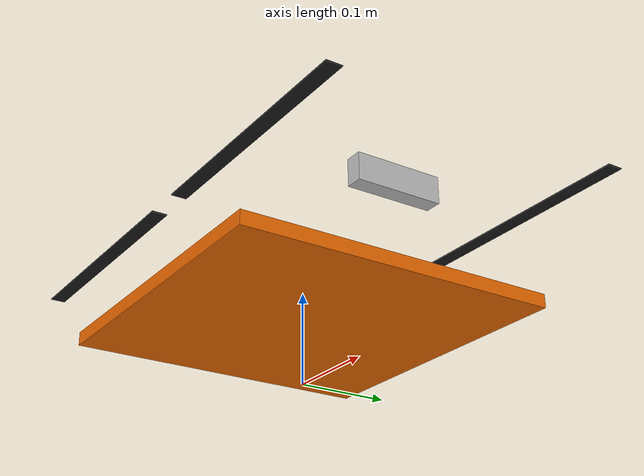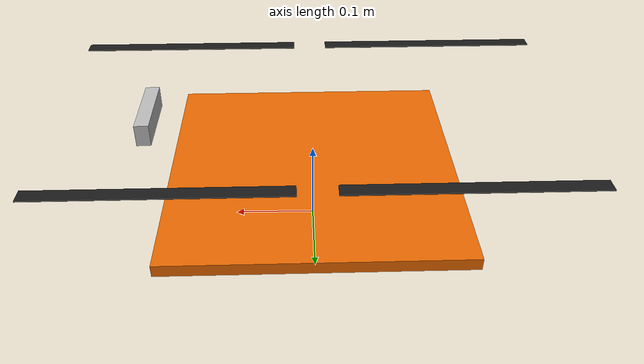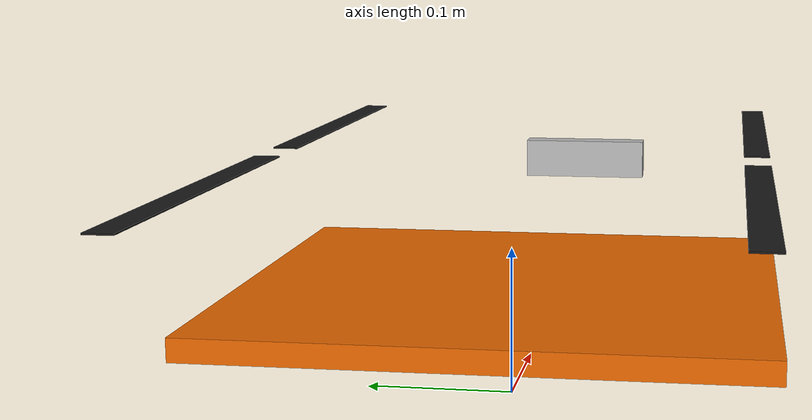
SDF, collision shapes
<?xml version="1.0" encoding="UTF-8"?>
<sdf version='1.9'>
  <model name='f450'>

    <include merge='true'>
      <uri>model://f450_base</uri>
    </include>

    <!-- rotor_0: front-left CCW -->
    <plugin filename="gz-sim-multicopter-motor-model-system"
            name="gz::sim::systems::MulticopterMotorModel">
      <jointName>rotor_0_joint</jointName>
      <linkName>rotor_0</linkName>
      <turningDirection>ccw</turningDirection>
      <timeConstantUp>0.0125</timeConstantUp>
      <timeConstantDown>0.025</timeConstantDown>
      <maxRotVelocity>1000.0</maxRotVelocity>
      <motorConstant>1.269e-05</motorConstant>
      <momentConstant>0.016</momentConstant>
      <commandSubTopic>command/motor_speed</commandSubTopic>
      <motorNumber>0</motorNumber>
      <rotorDragCoefficient>8.06428e-05</rotorDragCoefficient>
      <rollingMomentCoefficient>1e-06</rollingMomentCoefficient>
      <rotorVelocitySlowdownSim>10</rotorVelocitySlowdownSim>
      <motorType>velocity</motorType>
    </plugin>

    <!-- rotor_1: rear-right CCW -->
    <plugin filename="gz-sim-multicopter-motor-model-system"
            name="gz::sim::systems::MulticopterMotorModel">
      <jointName>rotor_1_joint</jointName>
      <linkName>rotor_1</linkName>
      <turningDirection>ccw</turningDirection>
      <timeConstantUp>0.0125</timeConstantUp>
      <timeConstantDown>0.025</timeConstantDown>
      <maxRotVelocity>1000.0</maxRotVelocity>
      <motorConstant>1.269e-05</motorConstant>
      <momentConstant>0.016</momentConstant>
      <commandSubTopic>command/motor_speed</commandSubTopic>
      <motorNumber>1</motorNumber>
      <rotorDragCoefficient>8.06428e-05</rotorDragCoefficient>
      <rollingMomentCoefficient>1e-06</rollingMomentCoefficient>
      <rotorVelocitySlowdownSim>10</rotorVelocitySlowdownSim>
      <motorType>velocity</motorType>
    </plugin>

    <!-- rotor_2: front-right CW -->
    <plugin filename="gz-sim-multicopter-motor-model-system"
            name="gz::sim::systems::MulticopterMotorModel">
      <jointName>rotor_2_joint</jointName>
      <linkName>rotor_2</linkName>
      <turningDirection>cw</turningDirection>
      <timeConstantUp>0.0125</timeConstantUp>
      <timeConstantDown>0.025</timeConstantDown>
      <maxRotVelocity>1000.0</maxRotVelocity>
      <motorConstant>1.269e-05</motorConstant>
      <momentConstant>0.016</momentConstant>
      <commandSubTopic>command/motor_speed</commandSubTopic>
      <motorNumber>2</motorNumber>
      <rotorDragCoefficient>8.06428e-05</rotorDragCoefficient>
      <rollingMomentCoefficient>1e-06</rollingMomentCoefficient>
      <rotorVelocitySlowdownSim>10</rotorVelocitySlowdownSim>
      <motorType>velocity</motorType>
    </plugin>

    <!-- rotor_3: rear-left CW -->
    <plugin filename="gz-sim-multicopter-motor-model-system"
            name="gz::sim::systems::MulticopterMotorModel">
      <jointName>rotor_3_joint</jointName>
      <linkName>rotor_3</linkName>
      <turningDirection>cw</turningDirection>
      <timeConstantUp>0.0125</timeConstantUp>
      <timeConstantDown>0.025</timeConstantDown>
      <maxRotVelocity>1000.0</maxRotVelocity>
      <motorConstant>1.269e-05</motorConstant>
      <momentConstant>0.016</momentConstant>
      <commandSubTopic>command/motor_speed</commandSubTopic>
      <motorNumber>3</motorNumber>
      <rotorDragCoefficient>8.06428e-05</rotorDragCoefficient>
      <rollingMomentCoefficient>1e-06</rollingMomentCoefficient>
      <rotorVelocitySlowdownSim>10</rotorVelocitySlowdownSim>
      <motorType>velocity</motorType>
    </plugin>

  </model>
</sdf>

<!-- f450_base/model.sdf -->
<sdf version='1.9'>
  <model name='f450_base'>
    <pose>0 0 0.1 0 0 0</pose>
    <self_collide>false</self_collide>
    <static>false</static>

    <!-- ══════════════════════════════════════════
         BASE LINK
    ══════════════════════════════════════════ -->
    <link name="base_link">
      <inertial>
        <mass>1.477</mass>
        <inertia>
          <ixx>0.01152</ixx><ixy>0</ixy><ixz>0</ixz>
          <iyy>0.01152</iyy><iyz>0</iyz>
          <izz>0.0218</izz>
        </inertia>
      </inertial>

      <gravity>true</gravity>
      <velocity_decay/>

      <!-- Visual: F450 DAE mesh (no baked rotors) -->
      <visual name="base_link_visual">
        <pose>0 0 0 0 0 0</pose>
        <geometry>
          <mesh>
            <scale>1 1 1</scale>
            <uri>file:///home/shantam/irobot/px4_sim/f450_quad_centered_scaled_norotor.dae</uri>
          </mesh>
        </geometry>
        <material>
          <ambient>0.9 0.4 0.0 1</ambient>
          <diffuse>0.9 0.4 0.0 1</diffuse>
          <specular>0.3 0.3 0.3 1</specular>
          <emissive>0.05 0.02 0.0 1</emissive>
        </material>
      </visual>

      <!-- Collision: single STL mesh (no baked rotors) -->
      <collision name="base_link_collision">
        <pose>0 0 -.03 0 0 0</pose>
        <geometry>
          <box>
            <size>0.35355339059327373 0.35355339059327373 0.015</size>
          </box>
        </geometry>
        <surface>
          <contact>
            <ode>
              <min_depth>0.01</min_depth>
              <max_vel>0</max_vel>
            </ode>
          </contact>
          <friction>
            <ode />
          </friction>
        </surface>
      </collision>

      <!-- ══════════════════════════════════════════
           PX4 REQUIRED SENSORS
           Exact noise values from x500_base
      ══════════════════════════════════════════ -->

      <sensor name="air_pressure_sensor" type="air_pressure">
        <gz_frame_id>base_link</gz_frame_id>
        <always_on>1</always_on>
        <update_rate>50</update_rate>
        <air_pressure>
          <pressure>
            <noise type="gaussian">
              <mean>0</mean>
              <stddev>3</stddev>
            </noise>
          </pressure>
        </air_pressure>
      </sensor>

      <sensor name="magnetometer_sensor" type="magnetometer">
        <gz_frame_id>base_link</gz_frame_id>
        <always_on>1</always_on>
        <update_rate>100</update_rate>
        <magnetometer>
          <x><noise type="gaussian"><stddev>0.0001</stddev></noise></x>
          <y><noise type="gaussian"><stddev>0.0001</stddev></noise></y>
          <z><noise type="gaussian"><stddev>0.0001</stddev></noise></z>
        </magnetometer>
      </sensor>

      <sensor name="imu_sensor" type="imu">
        <gz_frame_id>base_link</gz_frame_id>
        <always_on>1</always_on>
        <update_rate>250</update_rate>
        <imu>
          <angular_velocity>
            <x><noise type="gaussian"><mean>0.0</mean><stddev>0.0008726646</stddev></noise></x>
            <y><noise type="gaussian"><mean>0.0</mean><stddev>0.0008726646</stddev></noise></y>
            <z><noise type="gaussian"><mean>0.0</mean><stddev>0.0008726646</stddev></noise></z>
          </angular_velocity>
          <linear_acceleration>
            <x><noise type="gaussian"><mean>0.0</mean><stddev>0.00637</stddev></noise></x>
            <y><noise type="gaussian"><mean>0.0</mean><stddev>0.00637</stddev></noise></y>
            <z><noise type="gaussian"><mean>0.0</mean><stddev>0.00686</stddev></noise></z>
          </linear_acceleration>
        </imu>
      </sensor>

      <sensor name="navsat_sensor" type="navsat">
        <gz_frame_id>base_link</gz_frame_id>
        <always_on>1</always_on>
        <update_rate>30</update_rate>
      </sensor>

    </link>

    <!-- ══════════════════════════════════════════
         5x ToF SENSORS (A010, 72° ring)
    ══════════════════════════════════════════ -->

    <!-- Single shared ToF link, centered at drone origin -->
    <link name="tof_array_link">
      <inertial>
        <mass>0.005</mass>
        <inertia><ixx>1e-6</ixx><ixy>0</ixy><ixz>0</ixz>
                <iyy>1e-6</iyy><iyz>0</iyz><izz>1e-6</izz></inertia>
      </inertial>
      <self_collide>false</self_collide>
      <gravity>false</gravity>
    </link>
    <joint name="tof_array_joint" type="fixed">
      <parent>base_link</parent>
      <child>tof_array_link</child>
    </joint>

      <!-- ToF 0: front, 0° -->
    <link name="tof_0_link">
      <pose>0.25 0 0  0 0 0</pose>          <!-- front, 0° yaw -->
      <inertial><mass>0.0001</mass>
        <inertia><ixx>1e-9</ixx><ixy>0</ixy><ixz>0</ixz>
                <iyy>1e-9</iyy><iyz>0</iyz><izz>1e-9</izz></inertia>
      </inertial>
      <sensor name="tof_0" type="depth_camera">         <!-- offset from tof_array_link -->
        <gz_frame_id>tof_0_link</gz_frame_id>
        <always_on>1</always_on>
        <visualize>true</visualize>
        <update_rate>20</update_rate>
        <camera>
          <horizontal_fov>1.2217</horizontal_fov>
          <image><width>100</width><height>100</height><format>R_FLOAT32</format></image>
          <clip><near>0.2</near><far>3.0</far></clip>
        </camera>
        <topic>tof_0_depth</topic>
      </sensor>
    </link>
    <joint name="tof_0_joint" type="fixed">
      <parent>tof_array_link</parent>   <!-- parent is tof_array_link, not base_link -->
      <child>tof_0_link</child>
    </joint>

      <!-- ToF 1: front-left, 72° -->
    <link name="tof_1_link">
      <pose>0.077 0.236 0  0 0 1.2566</pose> <!-- front-left, 72° yaw -->
      <inertial><mass>0.0001</mass>
        <inertia><ixx>1e-9</ixx><ixy>0</ixy><ixz>0</ixz>
                <iyy>1e-9</iyy><iyz>0</iyz><izz>1e-9</izz></inertia>
      </inertial>

      <sensor name="tof_1" type="depth_camera">
        <gz_frame_id>tof_1_link</gz_frame_id>
        <always_on>1</always_on>
        <visualize>true</visualize>
        <update_rate>20</update_rate>
        <camera>
          <horizontal_fov>1.2217</horizontal_fov>
          <image><width>100</width><height>100</height><format>R_FLOAT32</format></image>
          <clip><near>0.2</near><far>3.0</far></clip>
        </camera>
        <topic>tof_1_depth</topic>
      </sensor>
    </link>
    <joint name="tof_1_joint" type="fixed">
      <parent>tof_array_link</parent>
      <child>tof_1_link</child>
    </joint>

    <link name="tof_2_link">
      <pose>-0.202 0.147 0  0 0 2.5133</pose> <!-- rear-left, 144° yaw -->
      <inertial><mass>0.0001</mass>
        <inertia><ixx>1e-9</ixx><ixy>0</ixy><ixz>0</ixz>
                <iyy>1e-9</iyy><iyz>0</iyz><izz>1e-9</izz></inertia>
      </inertial>

      <!-- ToF 2: rear-left, 144° -->
      <sensor name="tof_2" type="depth_camera">
        <gz_frame_id>tof_2_link</gz_frame_id>
        <always_on>1</always_on>
        <visualize>true</visualize>
        <update_rate>20</update_rate>
        <camera>
          <horizontal_fov>1.2217</horizontal_fov>
          <image><width>100</width><height>100</height><format>R_FLOAT32</format></image>
          <clip><near>0.2</near><far>3.0</far></clip>
        </camera>
        <topic>tof_2_depth</topic>
      </sensor>
    </link>
    <joint name="tof_2_joint" type="fixed">
      <parent>tof_array_link</parent>
      <child>tof_2_link</child>
    </joint>

    <link name="tof_3_link">
      <pose>-0.202 -0.147 0  0 0 -2.5133</pose> <!-- rear-right, -144° yaw -->
      <inertial><mass>0.0001</mass>
        <inertia><ixx>1e-9</ixx><ixy>0</ixy><ixz>0</ixz>
                <iyy>1e-9</iyy><iyz>0</iyz><izz>1e-9</izz></inertia>
      </inertial>

      <!-- ToF 3: rear-right, -144° -->
      <sensor name="tof_3" type="depth_camera">
        <gz_frame_id>tof_3_link</gz_frame_id>
        <always_on>1</always_on>
        <visualize>true</visualize>
        <update_rate>20</update_rate>
        <camera>
          <horizontal_fov>1.2217</horizontal_fov>
          <image><width>100</width><height>100</height><format>R_FLOAT32</format></image>
          <clip><near>0.2</near><far>3.0</far></clip>
        </camera>
        <topic>tof_3_depth</topic>
      </sensor>
    </link>
    <joint name="tof_3_joint" type="fixed">
      <parent>tof_array_link</parent>
      <child>tof_3_link</child>
    </joint>

    <link name="tof_4_link">
      <pose>0.077 -0.236 0  0 0 -1.2566</pose> <!-- front-right, -72° yaw -->
      <inertial><mass>0.0001</mass>
        <inertia><ixx>1e-9</ixx><ixy>0</ixy><ixz>0</ixz>
                <iyy>1e-9</iyy><iyz>0</iyz><izz>1e-9</izz></inertia>
      </inertial>

      <!-- ToF 4: front-right, -72° -->
      <sensor name="tof_4" type="depth_camera">
        <gz_frame_id>tof_4_link</gz_frame_id>
        <always_on>1</always_on>
        <visualize>true</visualize>
        <update_rate>20</update_rate>
        <camera>
          <horizontal_fov>1.2217</horizontal_fov>
          <image><width>100</width><height>100</height><format>R_FLOAT32</format></image>
          <clip><near>0.2</near><far>3.0</far></clip>
        </camera>
        <topic>tof_4_depth</topic>
      </sensor>

    </link>
    <joint name="tof_4_joint" type="fixed">
      <parent>tof_array_link</parent>
      <child>tof_4_link</child>
    </joint>

    <!-- ══════════════════════════════════════════
         RGBD FRONT CAMERA
    ══════════════════════════════════════════ -->
    <link name="rgbd_cam_link">
      <inertial>
        <mass>0.001</mass>
        <inertia><ixx>1e-6</ixx><ixy>0</ixy><ixz>0</ixz><iyy>1e-6</iyy><iyz>0</iyz><izz>1e-6</izz></inertia>
      </inertial>

      <pose>0.2 0 0.02 0 0 0</pose>

      <collision name="rgbd_cam_link/collision">
        <pose>0.00358 -0.03 .014 0 0 0</pose>
        <geometry>
          <box>
            <size>0.0175 0.091 0.028</size>
          </box>
        </geometry>
      </collision>

      <sensor name="rgbd_camera_rgb" type="camera">
        <gz_frame_id>rgbd_cam_link</gz_frame_id>
        <always_on>1</always_on><update_rate>30</update_rate>
        <camera>
          <horizontal_fov>1.047</horizontal_fov>
          <image><width>1280</width><height>720</height></image>
          <clip><near>0.1</near><far>10.0</far></clip>
          <noise><type>gaussian</type><mean>0</mean><stddev>0.005</stddev></noise>
        </camera>
        <visualize>true</visualize>
        <topic>rgbd_image</topic>
      </sensor>

      <sensor name="rgbd_camera" type="depth_camera">
        <gz_frame_id>rgbd_cam_link</gz_frame_id>
        <always_on>1</always_on><update_rate>30</update_rate>
        <camera>
          <horizontal_fov>1.047</horizontal_fov>
          <image><width>1280</width><height>720</height><format>R_FLOAT32</format></image>
          <clip><near>0.1</near><far>10.0</far></clip>
          <noise><type>gaussian</type><mean>0</mean><stddev>0.005</stddev></noise>
        </camera>
        <visualize>true</visualize>
        <topic>rgbd_depth</topic>
      </sensor>
    </link>
    <joint name="rgbd_cam_joint" type="fixed">
      <parent>base_link</parent><child>rgbd_cam_link</child>
    </joint>

    <!-- ══════════════════════════════════════════
         BOTTOM DEPTH CAMERA
    ══════════════════════════════════════════ -->
    <link name="bottom_cam_link">
      <self_collide>false</self_collide>
      <gravity>false</gravity>
      <pose>0 0 -0.05 0 1.5708 0</pose>
      <inertial>
        <mass>0.001</mass>
        <inertia><ixx>1e-6</ixx><ixy>0</ixy><ixz>0</ixz><iyy>1e-6</iyy><iyz>0</iyz><izz>1e-6</izz></inertia>
      </inertial>
      <sensor name="bottom_camera" type="depth_camera">
        <gz_frame_id>bottom_cam_link</gz_frame_id>
        <always_on>1</always_on><update_rate>20</update_rate>
        <camera>
          <horizontal_fov>1.2217</horizontal_fov>
          <image><width>100</width><height>100</height><format>R_FLOAT32</format></image>
          <clip><near>0.2</near><far>3.0</far></clip>
        </camera>
        <visualize>true</visualize>
        <topic>bottom_depth_camera</topic>
      </sensor>
    </link>
    <joint name="bottom_cam_joint" type="fixed">
      <parent>base_link</parent><child>bottom_cam_link</child>
    </joint>

    <!-- ══════════════════════════════════════════
         MOTOR BASES (static visuals at arm tips)
         Exact F450 positions: ±160.87mm = ±0.16087m
    ══════════════════════════════════════════ -->

    <link name="rotor_0">
      <!-- front-left CCW — matches CA_ROTOR0 (+x,+y) -->
      <self_collide>false</self_collide>
      <gravity>false</gravity>
      <pose>0.16087 -0.16087 0.062 0 0 0</pose>
      <self_collide>false</self_collide>
      <inertial>
        <mass>0.016076923076923075</mass>
        <inertia><ixx>3.8464910483993325e-07</ixx><ixy>0</ixy><ixz>0</ixz><iyy>2.6115851691700804e-05</iyy><iyz>0</iyz><izz>2.649858234714004e-05</izz></inertia>
      </inertial>
      <visual name="rotor_0_visual">
        <pose>-0.022 -0.146 -0.016 0 0 0</pose>
        <geometry><mesh><scale>0.846 0.846 0.846</scale><uri>model://x500_base/meshes/1345_prop_ccw.stl</uri></mesh></geometry>
        <material><ambient>0.1 0.1 0.1 1</ambient><diffuse>0.1 0.1 0.1 1</diffuse></material>
      </visual>
      <visual name="rotor_0_bell">
        <pose>0 0 -0.032 0 0 0</pose>
        <geometry><mesh><scale>1 1 1</scale><uri>model://x500_base/meshes/5010Bell.dae</uri></mesh></geometry>
      </visual>
      <collision name="rotor_0_collision">
        <geometry><box><size>0.279 0.017 0.001</size></box></geometry>
        <surface><contact><ode><min_depth>0.001</min_depth><max_vel>0</max_vel></ode></contact><friction><ode/></friction></surface>
      </collision>
    </link>
    <joint name="rotor_0_joint" type="revolute">
      <parent>base_link</parent><child>rotor_0</child>
      <axis><xyz>0 0 1</xyz><limit><lower>-1e+16</lower><upper>1e+16</upper></limit><dynamics><spring_reference>0</spring_reference><spring_stiffness>0</spring_stiffness></dynamics></axis>
    </joint>

    <link name="rotor_1">
      <gravity>true</gravity><self_collide>false</self_collide><velocity_decay/>
      <pose>-0.16087 0.16087 0.062 0 0 0</pose>
      <inertial>
        <mass>0.016076923076923075</mass>
        <inertia><ixx>3.8464910483993325e-07</ixx><ixy>0</ixy><ixz>0</ixz><iyy>2.6115851691700804e-05</iyy><iyz>0</iyz><izz>2.649858234714004e-05</izz></inertia>
      </inertial>
      <visual name="rotor_1_visual">
        <pose>-0.022 -0.146 -0.016 0 0 0</pose>
        <geometry><mesh><scale>0.846 0.846 0.846</scale><uri>model://x500_base/meshes/1345_prop_ccw.stl</uri></mesh></geometry>
        <material><ambient>0.1 0.1 0.1 1</ambient><diffuse>0.1 0.1 0.1 1</diffuse></material>
      </visual>
      <visual name="rotor_1_bell">
        <pose>0 0 -0.032 0 0 0</pose>
        <geometry><mesh><scale>1 1 1</scale><uri>model://x500_base/meshes/5010Bell.dae</uri></mesh></geometry>
      </visual>
      <collision name="rotor_1_collision">
        <geometry><box><size>0.279 0.017 0.001</size></box></geometry>
        <surface><contact><ode><min_depth>0.001</min_depth><max_vel>0</max_vel></ode></contact><friction><ode/></friction></surface>
      </collision>
    </link>
    <joint name="rotor_1_joint" type="revolute">
      <parent>base_link</parent><child>rotor_1</child>
      <axis><xyz>0 0 1</xyz><limit><lower>-1e+16</lower><upper>1e+16</upper></limit><dynamics><spring_reference>0</spring_reference><spring_stiffness>0</spring_stiffness></dynamics></axis>
    </joint>

    <link name="rotor_2">
      <gravity>true</gravity><self_collide>false</self_collide><velocity_decay/>
      <pose>0.16087 0.16087 0.062 0 0 0</pose>
      <inertial>
        <mass>0.016076923076923075</mass>
        <inertia><ixx>3.8464910483993325e-07</ixx><ixy>0</ixy><ixz>0</ixz><iyy>2.6115851691700804e-05</iyy><iyz>0</iyz><izz>2.649858234714004e-05</izz></inertia>
      </inertial>
      <visual name="rotor_2_visual">
        <pose>-0.022 -0.146 -0.016 0 0 0</pose>
        <geometry><mesh><scale>0.846 0.846 0.846</scale><uri>model://x500_base/meshes/1345_prop_cw.stl</uri></mesh></geometry>
        <material><ambient>0.1 0.1 0.1 1</ambient><diffuse>0.1 0.1 0.1 1</diffuse></material>
      </visual>
      <visual name="rotor_2_bell">
        <pose>0 0 -0.032 0 0 0</pose>
        <geometry><mesh><scale>1 1 1</scale><uri>model://x500_base/meshes/5010Bell.dae</uri></mesh></geometry>
      </visual>
      <collision name="rotor_2_collision">
        <geometry><box><size>0.279 0.017 0.001</size></box></geometry>
        <surface><contact><ode><min_depth>0.001</min_depth><max_vel>0</max_vel></ode></contact><friction><ode/></friction></surface>
      </collision>
    </link>
    <joint name="rotor_2_joint" type="revolute">
      <parent>base_link</parent><child>rotor_2</child>
      <axis><xyz>0 0 1</xyz><limit><lower>-1e+16</lower><upper>1e+16</upper></limit><dynamics><spring_reference>0</spring_reference><spring_stiffness>0</spring_stiffness></dynamics></axis>
    </joint>

    <link name="rotor_3">
      <gravity>true</gravity><self_collide>false</self_collide><velocity_decay/>
      <pose>-0.16087 -0.16087 0.062 0 0 0</pose>
      <inertial>
        <mass>0.016076923076923075</mass>
        <inertia><ixx>3.8464910483993325e-07</ixx><ixy>0</ixy><ixz>0</ixz><iyy>2.6115851691700804e-05</iyy><iyz>0</iyz><izz>2.649858234714004e-05</izz></inertia>
      </inertial>
      <visual name="rotor_3_visual">
        <pose>-0.022 -0.146 -0.016 0 0 0</pose>
        <geometry><mesh><scale>0.846 0.846 0.846</scale><uri>model://x500_base/meshes/1345_prop_cw.stl</uri></mesh></geometry>
        <material><ambient>0.1 0.1 0.1 1</ambient><diffuse>0.1 0.1 0.1 1</diffuse></material>
      </visual>
      <visual name="rotor_3_bell">
        <pose>0 0 -0.032 0 0 0</pose>
        <geometry><mesh><scale>1 1 1</scale><uri>model://x500_base/meshes/5010Bell.dae</uri></mesh></geometry>
      </visual>
      <collision name="rotor_3_collision">
        <geometry><box><size>0.279 0.017 0.001</size></box></geometry>
        <surface><contact><ode><min_depth>0.001</min_depth><max_vel>0</max_vel></ode></contact><friction><ode/></friction></surface>
      </collision>
    </link>
    <joint name="rotor_3_joint" type="revolute">
      <parent>base_link</parent><child>rotor_3</child>
      <axis><xyz>0 0 1</xyz><limit><lower>-1e+16</lower><upper>1e+16</upper></limit><dynamics><spring_reference>0</spring_reference><spring_stiffness>0</spring_stiffness></dynamics></axis>
    </joint>

  </model>
</sdf>
